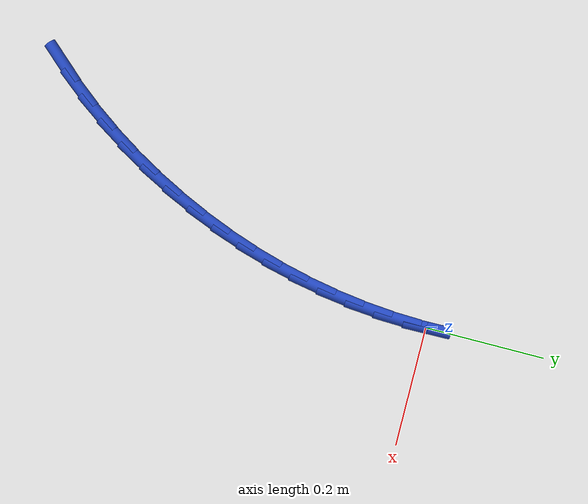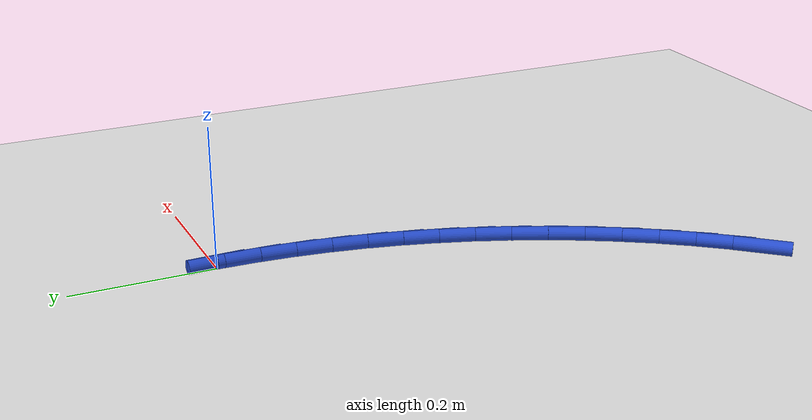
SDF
<sdf version="1.6">
 <world name="default">
  <model name="ground_plane">
   <static>1</static>
   <link name="link">
    <collision name="collision">
     <geometry><plane><normal>0 0 1</normal><size>100 100</size></plane></geometry>
     <surface><friction><ode><mu>100</mu><mu2>50</mu2></ode></friction></surface>
    </collision>
    <visual name="visual">
     <cast_shadows>0</cast_shadows>
     <geometry><plane><normal>0 0 1</normal><size>100 100</size></plane></geometry>
     <material>
      <script><uri>file://media/materials/scripts/gazebo.material</uri><name>Gazebo/WhiteGlow</name></script>
     </material>
    </visual>
   </link>
  </model>
  <model name="line">
   <link name="link_0">
    <pose>6.938893903907228e-18 6.938893903907228e-17 0.01 0 1.57 -1.5540113074684683</pose>
    <collision name="collision">
     <geometry><cylinder><radius>0.01</radius><length>0.08</length></cylinder></geometry>
    </collision>
    <visual name="visual">
     <material>
      <script><name>Gazebo/Blue</name><uri>file://media/materials/scripts/gazebo.material</uri></script>
     </material>
     <geometry><cylinder><radius>0.01</radius><length>0.08</length></cylinder></geometry>
    </visual>
   </link>
   <link name="link_125">
    <pose>-0.2720914495160109 -0.6924813982949286 0.01 0 1.57 0.8393533266023736</pose>
    <collision name="collision">
     <geometry><cylinder><radius>0.01</radius><length>0.08</length></cylinder></geometry>
    </collision>
    <visual name="visual">
     <material>
      <script><name>Gazebo/Blue</name><uri>file://media/materials/scripts/gazebo.material</uri></script>
     </material>
     <geometry><cylinder><radius>0.01</radius><length>0.08</length></cylinder></geometry>
    </visual>
   </link>
   <link name="link_126">
    <pose>-0.23844681996414288 -0.6549951627408963 0.01 0 1.57 0.89973448254431</pose>
    <collision name="collision">
     <geometry><cylinder><radius>0.01</radius><length>0.08</length></cylinder></geometry>
    </collision>
    <visual name="visual">
     <material>
      <script><name>Gazebo/Blue</name><uri>file://media/materials/scripts/gazebo.material</uri></script>
     </material>
     <geometry><cylinder><radius>0.01</radius><length>0.08</length></cylinder></geometry>
    </visual>
   </link>
   <link name="link_127">
    <pose>-0.20675538926634968 -0.6150807156843485 0.01 0 1.57 0.9557808545206063</pose>
    <collision name="collision">
     <geometry><cylinder><radius>0.01</radius><length>0.08</length></cylinder></geometry>
    </collision>
    <visual name="visual">
     <material>
      <script><name>Gazebo/Blue</name><uri>file://media/materials/scripts/gazebo.material</uri></script>
     </material>
     <geometry><cylinder><radius>0.01</radius><length>0.08</length></cylinder></geometry>
    </visual>
   </link>
   <link name="link_128">
    <pose>-0.17709507902830512 -0.5730933673540888 0.01 0 1.57 1.0083286176652033</pose>
    <collision name="collision">
     <geometry><cylinder><radius>0.01</radius><length>0.08</length></cylinder></geometry>
    </collision>
    <visual name="visual">
     <material>
      <script><name>Gazebo/Blue</name><uri>file://media/materials/scripts/gazebo.material</uri></script>
     </material>
     <geometry><cylinder><radius>0.01</radius><length>0.08</length></cylinder></geometry>
    </visual>
   </link>
   <link name="link_129">
    <pose>-0.1495438108556838 -0.5293884279789215 0.01 0 1.57 1.0581710321835358</pose>
    <collision name="collision">
     <geometry><cylinder><radius>0.01</radius><length>0.08</length></cylinder></geometry>
    </collision>
    <visual name="visual">
     <material>
      <script><name>Gazebo/Blue</name><uri>file://media/materials/scripts/gazebo.material</uri></script>
     </material>
     <geometry><cylinder><radius>0.01</radius><length>0.08</length></cylinder></geometry>
    </visual>
   </link>
   <link name="link_130">
    <pose>-0.12417950635416011 -0.484321207787651 0.01 0 1.57 1.1060671559639748</pose>
    <collision name="collision">
     <geometry><cylinder><radius>0.01</radius><length>0.08</length></cylinder></geometry>
    </collision>
    <visual name="visual">
     <material>
      <script><name>Gazebo/Blue</name><uri>file://media/materials/scripts/gazebo.material</uri></script>
     </material>
     <geometry><cylinder><radius>0.01</radius><length>0.08</length></cylinder></geometry>
    </visual>
   </link>
   <link name="link_131">
    <pose>-0.10108008712940818 -0.43824701700908086 0.01 0 1.57 1.152916959855592</pose>
    <collision name="collision">
     <geometry><cylinder><radius>0.01</radius><length>0.08</length></cylinder></geometry>
    </collision>
    <visual name="visual">
     <material>
      <script><name>Gazebo/Blue</name><uri>file://media/materials/scripts/gazebo.material</uri></script>
     </material>
     <geometry><cylinder><radius>0.01</radius><length>0.08</length></cylinder></geometry>
    </visual>
   </link>
   <link name="link_132">
    <pose>-0.08031508874372291 -0.3914823103183845 0.01 0 1.57 1.2000224114768006</pose>
    <collision name="collision">
     <geometry><cylinder><radius>0.01</radius><length>0.08</length></cylinder></geometry>
    </collision>
    <visual name="visual">
     <material>
      <script><name>Gazebo/Blue</name><uri>file://media/materials/scripts/gazebo.material</uri></script>
     </material>
     <geometry><cylinder><radius>0.01</radius><length>0.08</length></cylinder></geometry>
    </visual>
   </link>
   <link name="link_133">
    <pose>-0.06190953027380236 -0.3441372815099864 0.01 0 1.57 1.2476423474490603</pose>
    <collision name="collision">
     <geometry><cylinder><radius>0.01</radius><length>0.08</length></cylinder></geometry>
    </collision>
    <visual name="visual">
     <material>
      <script><name>Gazebo/Blue</name><uri>file://media/materials/scripts/gazebo.material</uri></script>
     </material>
     <geometry><cylinder><radius>0.01</radius><length>0.08</length></cylinder></geometry>
    </visual>
   </link>
   <link name="link_134">
    <pose>-0.045873716281650226 -0.2962539467420928 0.01 0 1.57 1.2956906839702977</pose>
    <collision name="collision">
     <geometry><cylinder><radius>0.01</radius><length>0.08</length></cylinder></geometry>
    </collision>
    <visual name="visual">
     <material>
      <script><name>Gazebo/Blue</name><uri>file://media/materials/scripts/gazebo.material</uri></script>
     </material>
     <geometry><cylinder><radius>0.01</radius><length>0.08</length></cylinder></geometry>
    </visual>
   </link>
   <link name="link_135">
    <pose>-0.03221794201080428 -0.24787427899710823 0.01 0 1.57 1.3440743098346029</pose>
    <collision name="collision">
     <geometry><cylinder><radius>0.01</radius><length>0.08</length></cylinder></geometry>
    </collision>
    <visual name="visual">
     <material>
      <script><name>Gazebo/Blue</name><uri>file://media/materials/scripts/gazebo.material</uri></script>
     </material>
     <geometry><cylinder><radius>0.01</radius><length>0.08</length></cylinder></geometry>
    </visual>
   </link>
   <link name="link_136">
    <pose>-0.0209525027048029 -0.19904025125743866 0.01 0 1.57 1.3926944502538479</pose>
    <collision name="collision">
     <geometry><cylinder><radius>0.01</radius><length>0.08</length></cylinder></geometry>
    </collision>
    <visual name="visual">
     <material>
      <script><name>Gazebo/Blue</name><uri>file://media/materials/scripts/gazebo.material</uri></script>
     </material>
     <geometry><cylinder><radius>0.01</radius><length>0.08</length></cylinder></geometry>
    </visual>
   </link>
   <link name="link_137">
    <pose>-0.012087693607183819 -0.14979383650548828 0.01 0 1.57 1.4414480724645364</pose>
    <collision name="collision">
     <geometry><cylinder><radius>0.01</radius><length>0.08</length></cylinder></geometry>
    </collision>
    <visual name="visual">
     <material>
      <script><name>Gazebo/Blue</name><uri>file://media/materials/scripts/gazebo.material</uri></script>
     </material>
     <geometry><cylinder><radius>0.01</radius><length>0.08</length></cylinder></geometry>
    </visual>
   </link>
   <link name="link_138">
    <pose>-0.005633809961485006 -0.10017700772366196 0.01 0 1.57 1.490229461885028</pose>
    <collision name="collision">
     <geometry><cylinder><radius>0.01</radius><length>0.08</length></cylinder></geometry>
    </collision>
    <visual name="visual">
     <material>
      <script><name>Gazebo/Blue</name><uri>file://media/materials/scripts/gazebo.material</uri></script>
     </material>
     <geometry><cylinder><radius>0.01</radius><length>0.08</length></cylinder></geometry>
    </visual>
   </link>
   <link name="link_139">
    <pose>-0.0016011470112444132 -0.05023173789436446 0.01 0 1.57 1.5389319092335059</pose>
    <collision name="collision">
     <geometry><cylinder><radius>0.01</radius><length>0.08</length></cylinder></geometry>
    </collision>
    <visual name="visual">
     <material>
      <script><name>Gazebo/Blue</name><uri>file://media/materials/scripts/gazebo.material</uri></script>
     </material>
     <geometry><cylinder><radius>0.01</radius><length>0.08</length></cylinder></geometry>
    </visual>
   </link>
   <link name="link_140">
    <pose>-5.204170427930421e-18 8.326672684688674e-17 0.01 0 1.57 -1.5541432128927268</pose>
    <collision name="collision">
     <geometry><cylinder><radius>0.01</radius><length>0.08</length></cylinder></geometry>
    </collision>
    <visual name="visual">
     <material>
      <script><name>Gazebo/Blue</name><uri>file://media/materials/scripts/gazebo.material</uri></script>
     </material>
     <geometry><cylinder><radius>0.01</radius><length>0.08</length></cylinder></geometry>
    </visual>
   </link>
  </model>
 </world>
</sdf>
